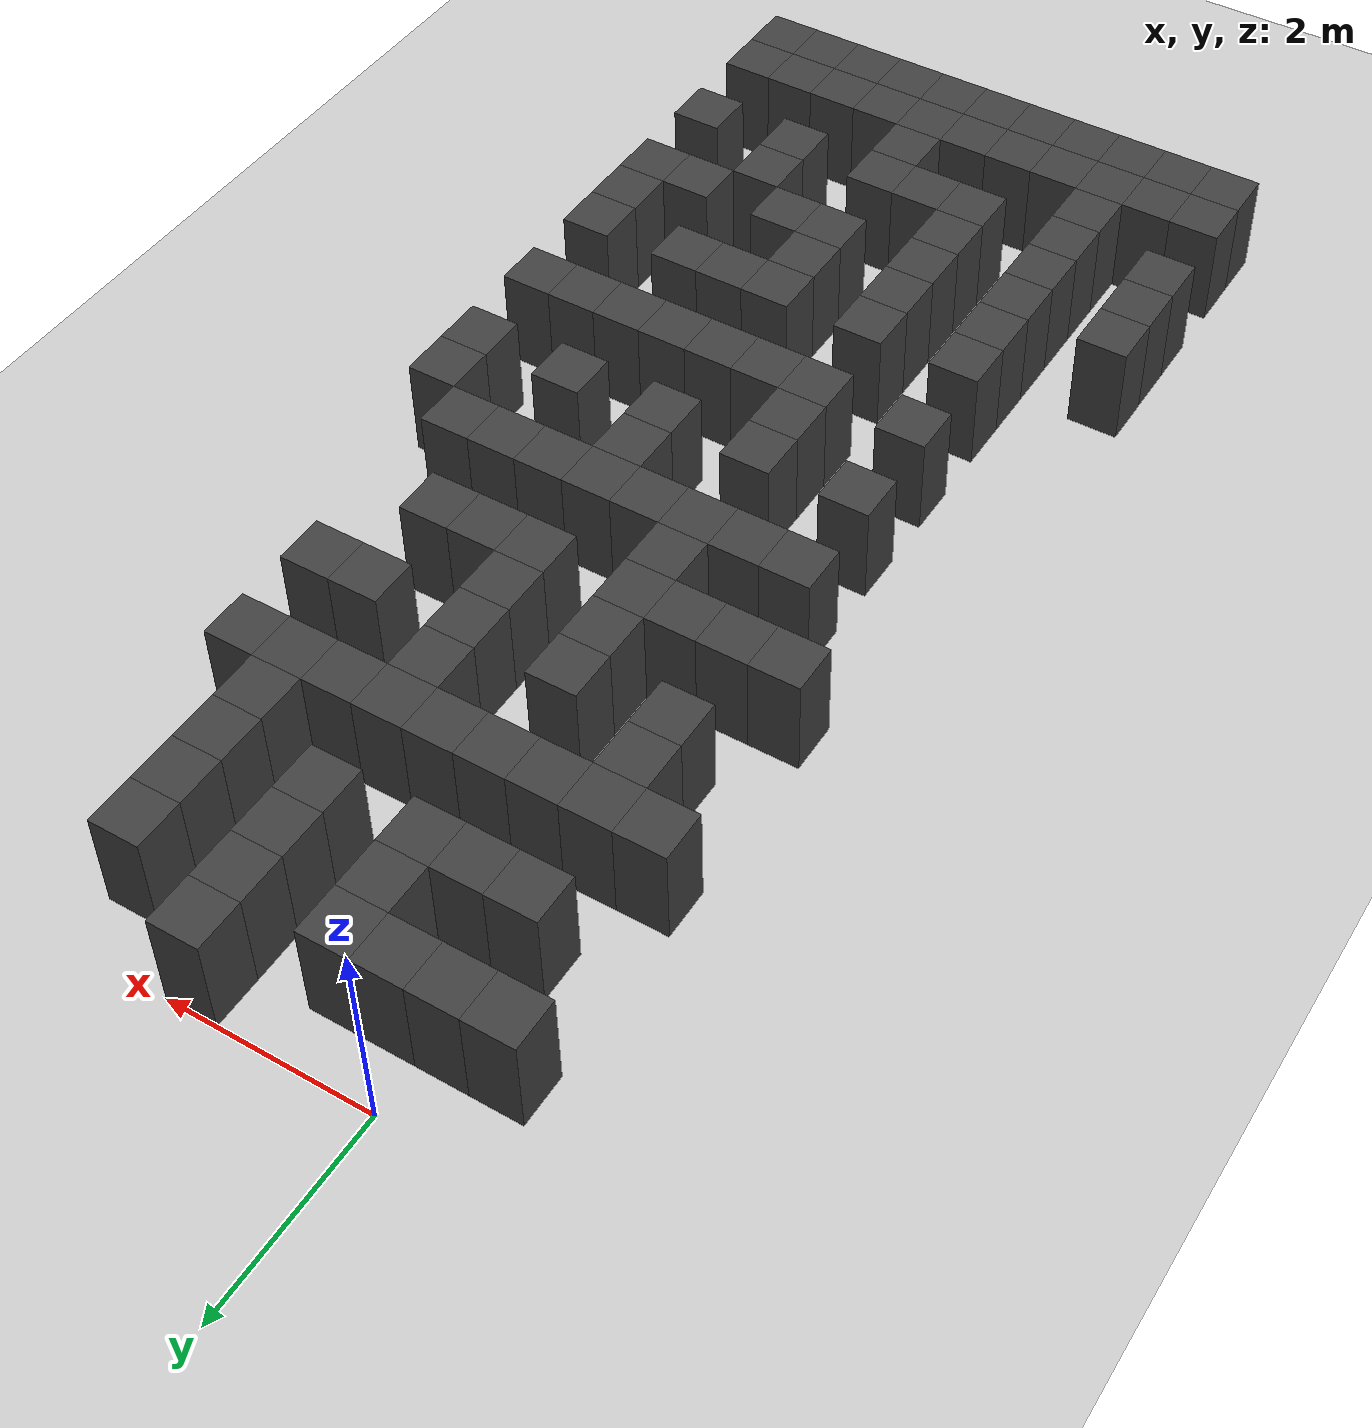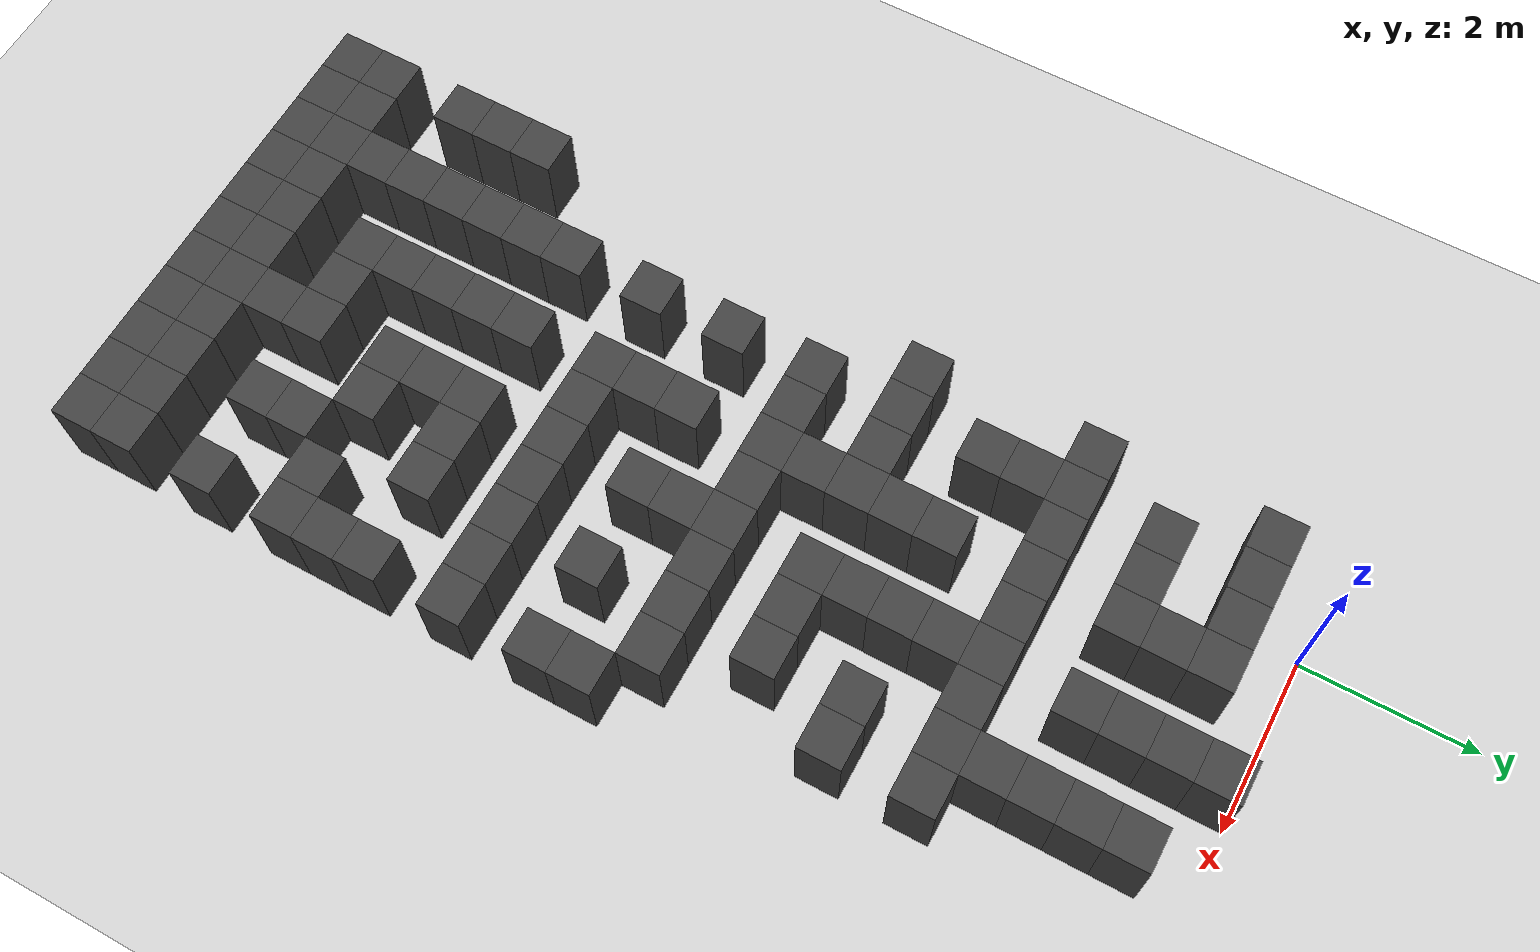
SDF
<sdf version="1.7">
 <world name="map_18313">
  <model name="ground_plane">
   <static>true</static>
   <link name="link">
    <collision name="collision">
     <geometry><plane><normal>0 0 1</normal><size>200 200</size></plane></geometry>
    </collision>
    <visual name="visual">
     <geometry><plane><normal>0 0 1</normal><size>200 200</size></plane></geometry>
     <material><ambient>0.8 0.8 0.8 1</ambient><diffuse>0.8 0.8 0.8 1</diffuse></material>
    </visual>
   </link>
  </model>
  <model name="maze_environment">
   <static>true</static>
   <link name="wall_649">
    <pose>1.750 -0.250 0.500 0 0 0</pose>
    <collision name="col"><geometry><box><size>0.5 0.5 1.0</size></box></geometry></collision>
    <visual name="vis">
     <geometry><box><size>0.5 0.5 1.0</size></box></geometry>
     <material><ambient>0.15 0.15 0.15 1</ambient><diffuse>0.25 0.25 0.25 1</diffuse></material>
    </visual>
   </link>
   <link name="wall_671">
    <pose>-0.750 -0.750 0.500 0 0 0</pose>
    <collision name="col"><geometry><box><size>0.5 0.5 1.0</size></box></geometry></collision>
    <visual name="vis">
     <geometry><box><size>0.5 0.5 1.0</size></box></geometry>
     <material><ambient>0.15 0.15 0.15 1</ambient><diffuse>0.25 0.25 0.25 1</diffuse></material>
    </visual>
   </link>
   <link name="wall_672">
    <pose>-0.250 -0.750 0.500 0 0 0</pose>
    <collision name="col"><geometry><box><size>0.5 0.5 1.0</size></box></geometry></collision>
    <visual name="vis">
     <geometry><box><size>0.5 0.5 1.0</size></box></geometry>
     <material><ambient>0.15 0.15 0.15 1</ambient><diffuse>0.25 0.25 0.25 1</diffuse></material>
    </visual>
   </link>
   <link name="wall_673">
    <pose>0.250 -0.750 0.500 0 0 0</pose>
    <collision name="col"><geometry><box><size>0.5 0.5 1.0</size></box></geometry></collision>
    <visual name="vis">
     <geometry><box><size>0.5 0.5 1.0</size></box></geometry>
     <material><ambient>0.15 0.15 0.15 1</ambient><diffuse>0.25 0.25 0.25 1</diffuse></material>
    </visual>
   </link>
   <link name="wall_674">
    <pose>0.750 -0.750 0.500 0 0 0</pose>
    <collision name="col"><geometry><box><size>0.5 0.5 1.0</size></box></geometry></collision>
    <visual name="vis">
     <geometry><box><size>0.5 0.5 1.0</size></box></geometry>
     <material><ambient>0.15 0.15 0.15 1</ambient><diffuse>0.25 0.25 0.25 1</diffuse></material>
    </visual>
   </link>
   <link name="wall_675">
    <pose>1.750 -0.750 0.500 0 0 0</pose>
    <collision name="col"><geometry><box><size>0.5 0.5 1.0</size></box></geometry></collision>
    <visual name="vis">
     <geometry><box><size>0.5 0.5 1.0</size></box></geometry>
     <material><ambient>0.15 0.15 0.15 1</ambient><diffuse>0.25 0.25 0.25 1</diffuse></material>
    </visual>
   </link>
   <link name="wall_676">
    <pose>2.750 -0.750 0.500 0 0 0</pose>
    <collision name="col"><geometry><box><size>0.5 0.5 1.0</size></box></geometry></collision>
    <visual name="vis">
     <geometry><box><size>0.5 0.5 1.0</size></box></geometry>
     <material><ambient>0.15 0.15 0.15 1</ambient><diffuse>0.25 0.25 0.25 1</diffuse></material>
    </visual>
   </link>
   <link name="wall_697">
    <pose>0.750 -1.250 0.500 0 0 0</pose>
    <collision name="col"><geometry><box><size>0.5 0.5 1.0</size></box></geometry></collision>
    <visual name="vis">
     <geometry><box><size>0.5 0.5 1.0</size></box></geometry>
     <material><ambient>0.15 0.15 0.15 1</ambient><diffuse>0.25 0.25 0.25 1</diffuse></material>
    </visual>
   </link>
   <link name="wall_698">
    <pose>1.750 -1.250 0.500 0 0 0</pose>
    <collision name="col"><geometry><box><size>0.5 0.5 1.0</size></box></geometry></collision>
    <visual name="vis">
     <geometry><box><size>0.5 0.5 1.0</size></box></geometry>
     <material><ambient>0.15 0.15 0.15 1</ambient><diffuse>0.25 0.25 0.25 1</diffuse></material>
    </visual>
   </link>
   <link name="wall_699">
    <pose>2.750 -1.250 0.500 0 0 0</pose>
    <collision name="col"><geometry><box><size>0.5 0.5 1.0</size></box></geometry></collision>
    <visual name="vis">
     <geometry><box><size>0.5 0.5 1.0</size></box></geometry>
     <material><ambient>0.15 0.15 0.15 1</ambient><diffuse>0.25 0.25 0.25 1</diffuse></material>
    </visual>
   </link>
   <link name="wall_724">
    <pose>-0.250 -1.750 0.500 0 0 0</pose>
    <collision name="col"><geometry><box><size>0.5 0.5 1.0</size></box></geometry></collision>
    <visual name="vis">
     <geometry><box><size>0.5 0.5 1.0</size></box></geometry>
     <material><ambient>0.15 0.15 0.15 1</ambient><diffuse>0.25 0.25 0.25 1</diffuse></material>
    </visual>
   </link>
   <link name="wall_725">
    <pose>0.250 -1.750 0.500 0 0 0</pose>
    <collision name="col"><geometry><box><size>0.5 0.5 1.0</size></box></geometry></collision>
    <visual name="vis">
     <geometry><box><size>0.5 0.5 1.0</size></box></geometry>
     <material><ambient>0.15 0.15 0.15 1</ambient><diffuse>0.25 0.25 0.25 1</diffuse></material>
    </visual>
   </link>
   <link name="wall_726">
    <pose>0.750 -1.750 0.500 0 0 0</pose>
    <collision name="col"><geometry><box><size>0.5 0.5 1.0</size></box></geometry></collision>
    <visual name="vis">
     <geometry><box><size>0.5 0.5 1.0</size></box></geometry>
     <material><ambient>0.15 0.15 0.15 1</ambient><diffuse>0.25 0.25 0.25 1</diffuse></material>
    </visual>
   </link>
   <link name="wall_727">
    <pose>1.750 -1.750 0.500 0 0 0</pose>
    <collision name="col"><geometry><box><size>0.5 0.5 1.0</size></box></geometry></collision>
    <visual name="vis">
     <geometry><box><size>0.5 0.5 1.0</size></box></geometry>
     <material><ambient>0.15 0.15 0.15 1</ambient><diffuse>0.25 0.25 0.25 1</diffuse></material>
    </visual>
   </link>
   <link name="wall_728">
    <pose>2.750 -1.750 0.500 0 0 0</pose>
    <collision name="col"><geometry><box><size>0.5 0.5 1.0</size></box></geometry></collision>
    <visual name="vis">
     <geometry><box><size>0.5 0.5 1.0</size></box></geometry>
     <material><ambient>0.15 0.15 0.15 1</ambient><diffuse>0.25 0.25 0.25 1</diffuse></material>
    </visual>
   </link>
   <link name="wall_747">
    <pose>2.750 -2.250 0.500 0 0 0</pose>
    <collision name="col"><geometry><box><size>0.5 0.5 1.0</size></box></geometry></collision>
    <visual name="vis">
     <geometry><box><size>0.5 0.5 1.0</size></box></geometry>
     <material><ambient>0.15 0.15 0.15 1</ambient><diffuse>0.25 0.25 0.25 1</diffuse></material>
    </visual>
   </link>
   <link name="wall_770">
    <pose>-0.750 -2.750 0.500 0 0 0</pose>
    <collision name="col"><geometry><box><size>0.5 0.5 1.0</size></box></geometry></collision>
    <visual name="vis">
     <geometry><box><size>0.5 0.5 1.0</size></box></geometry>
     <material><ambient>0.15 0.15 0.15 1</ambient><diffuse>0.25 0.25 0.25 1</diffuse></material>
    </visual>
   </link>
   <link name="wall_771">
    <pose>-0.250 -2.750 0.500 0 0 0</pose>
    <collision name="col"><geometry><box><size>0.5 0.5 1.0</size></box></geometry></collision>
    <visual name="vis">
     <geometry><box><size>0.5 0.5 1.0</size></box></geometry>
     <material><ambient>0.15 0.15 0.15 1</ambient><diffuse>0.25 0.25 0.25 1</diffuse></material>
    </visual>
   </link>
   <link name="wall_772">
    <pose>0.250 -2.750 0.500 0 0 0</pose>
    <collision name="col"><geometry><box><size>0.5 0.5 1.0</size></box></geometry></collision>
    <visual name="vis">
     <geometry><box><size>0.5 0.5 1.0</size></box></geometry>
     <material><ambient>0.15 0.15 0.15 1</ambient><diffuse>0.25 0.25 0.25 1</diffuse></material>
    </visual>
   </link>
   <link name="wall_773">
    <pose>0.750 -2.750 0.500 0 0 0</pose>
    <collision name="col"><geometry><box><size>0.5 0.5 1.0</size></box></geometry></collision>
    <visual name="vis">
     <geometry><box><size>0.5 0.5 1.0</size></box></geometry>
     <material><ambient>0.15 0.15 0.15 1</ambient><diffuse>0.25 0.25 0.25 1</diffuse></material>
    </visual>
   </link>
   <link name="wall_774">
    <pose>1.250 -2.750 0.500 0 0 0</pose>
    <collision name="col"><geometry><box><size>0.5 0.5 1.0</size></box></geometry></collision>
    <visual name="vis">
     <geometry><box><size>0.5 0.5 1.0</size></box></geometry>
     <material><ambient>0.15 0.15 0.15 1</ambient><diffuse>0.25 0.25 0.25 1</diffuse></material>
    </visual>
   </link>
   <link name="wall_775">
    <pose>1.750 -2.750 0.500 0 0 0</pose>
    <collision name="col"><geometry><box><size>0.5 0.5 1.0</size></box></geometry></collision>
    <visual name="vis">
     <geometry><box><size>0.5 0.5 1.0</size></box></geometry>
     <material><ambient>0.15 0.15 0.15 1</ambient><diffuse>0.25 0.25 0.25 1</diffuse></material>
    </visual>
   </link>
   <link name="wall_776">
    <pose>2.250 -2.750 0.500 0 0 0</pose>
    <collision name="col"><geometry><box><size>0.5 0.5 1.0</size></box></geometry></collision>
    <visual name="vis">
     <geometry><box><size>0.5 0.5 1.0</size></box></geometry>
     <material><ambient>0.15 0.15 0.15 1</ambient><diffuse>0.25 0.25 0.25 1</diffuse></material>
    </visual>
   </link>
   <link name="wall_777">
    <pose>2.750 -2.750 0.500 0 0 0</pose>
    <collision name="col"><geometry><box><size>0.5 0.5 1.0</size></box></geometry></collision>
    <visual name="vis">
     <geometry><box><size>0.5 0.5 1.0</size></box></geometry>
     <material><ambient>0.15 0.15 0.15 1</ambient><diffuse>0.25 0.25 0.25 1</diffuse></material>
    </visual>
   </link>
   <link name="wall_778">
    <pose>3.250 -2.750 0.500 0 0 0</pose>
    <collision name="col"><geometry><box><size>0.5 0.5 1.0</size></box></geometry></collision>
    <visual name="vis">
     <geometry><box><size>0.5 0.5 1.0</size></box></geometry>
     <material><ambient>0.15 0.15 0.15 1</ambient><diffuse>0.25 0.25 0.25 1</diffuse></material>
    </visual>
   </link>
   <link name="wall_798">
    <pose>-0.250 -3.250 0.500 0 0 0</pose>
    <collision name="col"><geometry><box><size>0.5 0.5 1.0</size></box></geometry></collision>
    <visual name="vis">
     <geometry><box><size>0.5 0.5 1.0</size></box></geometry>
     <material><ambient>0.15 0.15 0.15 1</ambient><diffuse>0.25 0.25 0.25 1</diffuse></material>
    </visual>
   </link>
   <link name="wall_799">
    <pose>1.750 -3.250 0.500 0 0 0</pose>
    <collision name="col"><geometry><box><size>0.5 0.5 1.0</size></box></geometry></collision>
    <visual name="vis">
     <geometry><box><size>0.5 0.5 1.0</size></box></geometry>
     <material><ambient>0.15 0.15 0.15 1</ambient><diffuse>0.25 0.25 0.25 1</diffuse></material>
    </visual>
   </link>
   <link name="wall_821">
    <pose>-0.250 -3.750 0.500 0 0 0</pose>
    <collision name="col"><geometry><box><size>0.5 0.5 1.0</size></box></geometry></collision>
    <visual name="vis">
     <geometry><box><size>0.5 0.5 1.0</size></box></geometry>
     <material><ambient>0.15 0.15 0.15 1</ambient><diffuse>0.25 0.25 0.25 1</diffuse></material>
    </visual>
   </link>
   <link name="wall_822">
    <pose>0.750 -3.750 0.500 0 0 0</pose>
    <collision name="col"><geometry><box><size>0.5 0.5 1.0</size></box></geometry></collision>
    <visual name="vis">
     <geometry><box><size>0.5 0.5 1.0</size></box></geometry>
     <material><ambient>0.15 0.15 0.15 1</ambient><diffuse>0.25 0.25 0.25 1</diffuse></material>
    </visual>
   </link>
   <link name="wall_823">
    <pose>1.750 -3.750 0.500 0 0 0</pose>
    <collision name="col"><geometry><box><size>0.5 0.5 1.0</size></box></geometry></collision>
    <visual name="vis">
     <geometry><box><size>0.5 0.5 1.0</size></box></geometry>
     <material><ambient>0.15 0.15 0.15 1</ambient><diffuse>0.25 0.25 0.25 1</diffuse></material>
    </visual>
   </link>
   <link name="wall_824">
    <pose>2.750 -3.750 0.500 0 0 0</pose>
    <collision name="col"><geometry><box><size>0.5 0.5 1.0</size></box></geometry></collision>
    <visual name="vis">
     <geometry><box><size>0.5 0.5 1.0</size></box></geometry>
     <material><ambient>0.15 0.15 0.15 1</ambient><diffuse>0.25 0.25 0.25 1</diffuse></material>
    </visual>
   </link>
   <link name="wall_825">
    <pose>3.250 -3.750 0.500 0 0 0</pose>
    <collision name="col"><geometry><box><size>0.5 0.5 1.0</size></box></geometry></collision>
    <visual name="vis">
     <geometry><box><size>0.5 0.5 1.0</size></box></geometry>
     <material><ambient>0.15 0.15 0.15 1</ambient><diffuse>0.25 0.25 0.25 1</diffuse></material>
    </visual>
   </link>
   <link name="wall_847">
    <pose>0.750 -4.250 0.500 0 0 0</pose>
    <collision name="col"><geometry><box><size>0.5 0.5 1.0</size></box></geometry></collision>
    <visual name="vis">
     <geometry><box><size>0.5 0.5 1.0</size></box></geometry>
     <material><ambient>0.15 0.15 0.15 1</ambient><diffuse>0.25 0.25 0.25 1</diffuse></material>
    </visual>
   </link>
   <link name="wall_848">
    <pose>1.750 -4.250 0.500 0 0 0</pose>
    <collision name="col"><geometry><box><size>0.5 0.5 1.0</size></box></geometry></collision>
    <visual name="vis">
     <geometry><box><size>0.5 0.5 1.0</size></box></geometry>
     <material><ambient>0.15 0.15 0.15 1</ambient><diffuse>0.25 0.25 0.25 1</diffuse></material>
    </visual>
   </link>
   <link name="wall_869">
    <pose>-0.750 -4.750 0.500 0 0 0</pose>
    <collision name="col"><geometry><box><size>0.5 0.5 1.0</size></box></geometry></collision>
    <visual name="vis">
     <geometry><box><size>0.5 0.5 1.0</size></box></geometry>
     <material><ambient>0.15 0.15 0.15 1</ambient><diffuse>0.25 0.25 0.25 1</diffuse></material>
    </visual>
   </link>
   <link name="wall_870">
    <pose>-0.250 -4.750 0.500 0 0 0</pose>
    <collision name="col"><geometry><box><size>0.5 0.5 1.0</size></box></geometry></collision>
    <visual name="vis">
     <geometry><box><size>0.5 0.5 1.0</size></box></geometry>
     <material><ambient>0.15 0.15 0.15 1</ambient><diffuse>0.25 0.25 0.25 1</diffuse></material>
    </visual>
   </link>
   <link name="wall_871">
    <pose>0.250 -4.750 0.500 0 0 0</pose>
    <collision name="col"><geometry><box><size>0.5 0.5 1.0</size></box></geometry></collision>
    <visual name="vis">
     <geometry><box><size>0.5 0.5 1.0</size></box></geometry>
     <material><ambient>0.15 0.15 0.15 1</ambient><diffuse>0.25 0.25 0.25 1</diffuse></material>
    </visual>
   </link>
   <link name="wall_872">
    <pose>0.750 -4.750 0.500 0 0 0</pose>
    <collision name="col"><geometry><box><size>0.5 0.5 1.0</size></box></geometry></collision>
    <visual name="vis">
     <geometry><box><size>0.5 0.5 1.0</size></box></geometry>
     <material><ambient>0.15 0.15 0.15 1</ambient><diffuse>0.25 0.25 0.25 1</diffuse></material>
    </visual>
   </link>
   <link name="wall_873">
    <pose>1.750 -4.750 0.500 0 0 0</pose>
    <collision name="col"><geometry><box><size>0.5 0.5 1.0</size></box></geometry></collision>
    <visual name="vis">
     <geometry><box><size>0.5 0.5 1.0</size></box></geometry>
     <material><ambient>0.15 0.15 0.15 1</ambient><diffuse>0.25 0.25 0.25 1</diffuse></material>
    </visual>
   </link>
   <link name="wall_874">
    <pose>2.250 -4.750 0.500 0 0 0</pose>
    <collision name="col"><geometry><box><size>0.5 0.5 1.0</size></box></geometry></collision>
    <visual name="vis">
     <geometry><box><size>0.5 0.5 1.0</size></box></geometry>
     <material><ambient>0.15 0.15 0.15 1</ambient><diffuse>0.25 0.25 0.25 1</diffuse></material>
    </visual>
   </link>
   <link name="wall_875">
    <pose>2.750 -4.750 0.500 0 0 0</pose>
    <collision name="col"><geometry><box><size>0.5 0.5 1.0</size></box></geometry></collision>
    <visual name="vis">
     <geometry><box><size>0.5 0.5 1.0</size></box></geometry>
     <material><ambient>0.15 0.15 0.15 1</ambient><diffuse>0.25 0.25 0.25 1</diffuse></material>
    </visual>
   </link>
   <link name="wall_897">
    <pose>0.750 -5.250 0.500 0 0 0</pose>
    <collision name="col"><geometry><box><size>0.5 0.5 1.0</size></box></geometry></collision>
    <visual name="vis">
     <geometry><box><size>0.5 0.5 1.0</size></box></geometry>
     <material><ambient>0.15 0.15 0.15 1</ambient><diffuse>0.25 0.25 0.25 1</diffuse></material>
    </visual>
   </link>
   <link name="wall_920">
    <pose>-0.250 -5.750 0.500 0 0 0</pose>
    <collision name="col"><geometry><box><size>0.5 0.5 1.0</size></box></geometry></collision>
    <visual name="vis">
     <geometry><box><size>0.5 0.5 1.0</size></box></geometry>
     <material><ambient>0.15 0.15 0.15 1</ambient><diffuse>0.25 0.25 0.25 1</diffuse></material>
    </visual>
   </link>
   <link name="wall_921">
    <pose>0.250 -5.750 0.500 0 0 0</pose>
    <collision name="col"><geometry><box><size>0.5 0.5 1.0</size></box></geometry></collision>
    <visual name="vis">
     <geometry><box><size>0.5 0.5 1.0</size></box></geometry>
     <material><ambient>0.15 0.15 0.15 1</ambient><diffuse>0.25 0.25 0.25 1</diffuse></material>
    </visual>
   </link>
   <link name="wall_922">
    <pose>0.750 -5.750 0.500 0 0 0</pose>
    <collision name="col"><geometry><box><size>0.5 0.5 1.0</size></box></geometry></collision>
    <visual name="vis">
     <geometry><box><size>0.5 0.5 1.0</size></box></geometry>
     <material><ambient>0.15 0.15 0.15 1</ambient><diffuse>0.25 0.25 0.25 1</diffuse></material>
    </visual>
   </link>
   <link name="wall_923">
    <pose>1.250 -5.750 0.500 0 0 0</pose>
    <collision name="col"><geometry><box><size>0.5 0.5 1.0</size></box></geometry></collision>
    <visual name="vis">
     <geometry><box><size>0.5 0.5 1.0</size></box></geometry>
     <material><ambient>0.15 0.15 0.15 1</ambient><diffuse>0.25 0.25 0.25 1</diffuse></material>
    </visual>
   </link>
   <link name="wall_924">
    <pose>1.750 -5.750 0.500 0 0 0</pose>
    <collision name="col"><geometry><box><size>0.5 0.5 1.0</size></box></geometry></collision>
    <visual name="vis">
     <geometry><box><size>0.5 0.5 1.0</size></box></geometry>
     <material><ambient>0.15 0.15 0.15 1</ambient><diffuse>0.25 0.25 0.25 1</diffuse></material>
    </visual>
   </link>
   <link name="wall_925">
    <pose>2.250 -5.750 0.500 0 0 0</pose>
    <collision name="col"><geometry><box><size>0.5 0.5 1.0</size></box></geometry></collision>
    <visual name="vis">
     <geometry><box><size>0.5 0.5 1.0</size></box></geometry>
     <material><ambient>0.15 0.15 0.15 1</ambient><diffuse>0.25 0.25 0.25 1</diffuse></material>
    </visual>
   </link>
   <link name="wall_926">
    <pose>2.750 -5.750 0.500 0 0 0</pose>
    <collision name="col"><geometry><box><size>0.5 0.5 1.0</size></box></geometry></collision>
    <visual name="vis">
     <geometry><box><size>0.5 0.5 1.0</size></box></geometry>
     <material><ambient>0.15 0.15 0.15 1</ambient><diffuse>0.25 0.25 0.25 1</diffuse></material>
    </visual>
   </link>
   <link name="wall_927">
    <pose>3.250 -5.750 0.500 0 0 0</pose>
    <collision name="col"><geometry><box><size>0.5 0.5 1.0</size></box></geometry></collision>
    <visual name="vis">
     <geometry><box><size>0.5 0.5 1.0</size></box></geometry>
     <material><ambient>0.15 0.15 0.15 1</ambient><diffuse>0.25 0.25 0.25 1</diffuse></material>
    </visual>
   </link>
   <link name="wall_947">
    <pose>1.750 -6.250 0.500 0 0 0</pose>
    <collision name="col"><geometry><box><size>0.5 0.5 1.0</size></box></geometry></collision>
    <visual name="vis">
     <geometry><box><size>0.5 0.5 1.0</size></box></geometry>
     <material><ambient>0.15 0.15 0.15 1</ambient><diffuse>0.25 0.25 0.25 1</diffuse></material>
    </visual>
   </link>
   <link name="wall_948">
    <pose>3.750 -6.250 0.500 0 0 0</pose>
    <collision name="col"><geometry><box><size>0.5 0.5 1.0</size></box></geometry></collision>
    <visual name="vis">
     <geometry><box><size>0.5 0.5 1.0</size></box></geometry>
     <material><ambient>0.15 0.15 0.15 1</ambient><diffuse>0.25 0.25 0.25 1</diffuse></material>
    </visual>
   </link>
   <link name="wall_970">
    <pose>-0.250 -6.750 0.500 0 0 0</pose>
    <collision name="col"><geometry><box><size>0.5 0.5 1.0</size></box></geometry></collision>
    <visual name="vis">
     <geometry><box><size>0.5 0.5 1.0</size></box></geometry>
     <material><ambient>0.15 0.15 0.15 1</ambient><diffuse>0.25 0.25 0.25 1</diffuse></material>
    </visual>
   </link>
   <link name="wall_971">
    <pose>0.750 -6.750 0.500 0 0 0</pose>
    <collision name="col"><geometry><box><size>0.5 0.5 1.0</size></box></geometry></collision>
    <visual name="vis">
     <geometry><box><size>0.5 0.5 1.0</size></box></geometry>
     <material><ambient>0.15 0.15 0.15 1</ambient><diffuse>0.25 0.25 0.25 1</diffuse></material>
    </visual>
   </link>
   <link name="wall_972">
    <pose>1.750 -6.750 0.500 0 0 0</pose>
    <collision name="col"><geometry><box><size>0.5 0.5 1.0</size></box></geometry></collision>
    <visual name="vis">
     <geometry><box><size>0.5 0.5 1.0</size></box></geometry>
     <material><ambient>0.15 0.15 0.15 1</ambient><diffuse>0.25 0.25 0.25 1</diffuse></material>
    </visual>
   </link>
   <link name="wall_973">
    <pose>2.750 -6.750 0.500 0 0 0</pose>
    <collision name="col"><geometry><box><size>0.5 0.5 1.0</size></box></geometry></collision>
    <visual name="vis">
     <geometry><box><size>0.5 0.5 1.0</size></box></geometry>
     <material><ambient>0.15 0.15 0.15 1</ambient><diffuse>0.25 0.25 0.25 1</diffuse></material>
    </visual>
   </link>
   <link name="wall_974">
    <pose>3.750 -6.750 0.500 0 0 0</pose>
    <collision name="col"><geometry><box><size>0.5 0.5 1.0</size></box></geometry></collision>
    <visual name="vis">
     <geometry><box><size>0.5 0.5 1.0</size></box></geometry>
     <material><ambient>0.15 0.15 0.15 1</ambient><diffuse>0.25 0.25 0.25 1</diffuse></material>
    </visual>
   </link>
   <link name="wall_996">
    <pose>0.750 -7.250 0.500 0 0 0</pose>
    <collision name="col"><geometry><box><size>0.5 0.5 1.0</size></box></geometry></collision>
    <visual name="vis">
     <geometry><box><size>0.5 0.5 1.0</size></box></geometry>
     <material><ambient>0.15 0.15 0.15 1</ambient><diffuse>0.25 0.25 0.25 1</diffuse></material>
    </visual>
   </link>
   <link name="wall_1019">
    <pose>-0.250 -7.750 0.500 0 0 0</pose>
    <collision name="col"><geometry><box><size>0.5 0.5 1.0</size></box></geometry></collision>
    <visual name="vis">
     <geometry><box><size>0.5 0.5 1.0</size></box></geometry>
     <material><ambient>0.15 0.15 0.15 1</ambient><diffuse>0.25 0.25 0.25 1</diffuse></material>
    </visual>
   </link>
   <link name="wall_1020">
    <pose>0.750 -7.750 0.500 0 0 0</pose>
    <collision name="col"><geometry><box><size>0.5 0.5 1.0</size></box></geometry></collision>
    <visual name="vis">
     <geometry><box><size>0.5 0.5 1.0</size></box></geometry>
     <material><ambient>0.15 0.15 0.15 1</ambient><diffuse>0.25 0.25 0.25 1</diffuse></material>
    </visual>
   </link>
   <link name="wall_1021">
    <pose>1.250 -7.750 0.500 0 0 0</pose>
    <collision name="col"><geometry><box><size>0.5 0.5 1.0</size></box></geometry></collision>
    <visual name="vis">
     <geometry><box><size>0.5 0.5 1.0</size></box></geometry>
     <material><ambient>0.15 0.15 0.15 1</ambient><diffuse>0.25 0.25 0.25 1</diffuse></material>
    </visual>
   </link>
   <link name="wall_1022">
    <pose>1.750 -7.750 0.500 0 0 0</pose>
    <collision name="col"><geometry><box><size>0.5 0.5 1.0</size></box></geometry></collision>
    <visual name="vis">
     <geometry><box><size>0.5 0.5 1.0</size></box></geometry>
     <material><ambient>0.15 0.15 0.15 1</ambient><diffuse>0.25 0.25 0.25 1</diffuse></material>
    </visual>
   </link>
   <link name="wall_1023">
    <pose>2.250 -7.750 0.500 0 0 0</pose>
    <collision name="col"><geometry><box><size>0.5 0.5 1.0</size></box></geometry></collision>
    <visual name="vis">
     <geometry><box><size>0.5 0.5 1.0</size></box></geometry>
     <material><ambient>0.15 0.15 0.15 1</ambient><diffuse>0.25 0.25 0.25 1</diffuse></material>
    </visual>
   </link>
   <link name="wall_1024">
    <pose>2.750 -7.750 0.500 0 0 0</pose>
    <collision name="col"><geometry><box><size>0.5 0.5 1.0</size></box></geometry></collision>
    <visual name="vis">
     <geometry><box><size>0.5 0.5 1.0</size></box></geometry>
     <material><ambient>0.15 0.15 0.15 1</ambient><diffuse>0.25 0.25 0.25 1</diffuse></material>
    </visual>
   </link>
   <link name="wall_1025">
    <pose>3.250 -7.750 0.500 0 0 0</pose>
    <collision name="col"><geometry><box><size>0.5 0.5 1.0</size></box></geometry></collision>
    <visual name="vis">
     <geometry><box><size>0.5 0.5 1.0</size></box></geometry>
     <material><ambient>0.15 0.15 0.15 1</ambient><diffuse>0.25 0.25 0.25 1</diffuse></material>
    </visual>
   </link>
   <link name="wall_1026">
    <pose>3.750 -7.750 0.500 0 0 0</pose>
    <collision name="col"><geometry><box><size>0.5 0.5 1.0</size></box></geometry></collision>
    <visual name="vis">
     <geometry><box><size>0.5 0.5 1.0</size></box></geometry>
     <material><ambient>0.15 0.15 0.15 1</ambient><diffuse>0.25 0.25 0.25 1</diffuse></material>
    </visual>
   </link>
   <link name="wall_1069">
    <pose>-0.250 -8.750 0.500 0 0 0</pose>
    <collision name="col"><geometry><box><size>0.5 0.5 1.0</size></box></geometry></collision>
    <visual name="vis">
     <geometry><box><size>0.5 0.5 1.0</size></box></geometry>
     <material><ambient>0.15 0.15 0.15 1</ambient><diffuse>0.25 0.25 0.25 1</diffuse></material>
    </visual>
   </link>
   <link name="wall_1070">
    <pose>0.750 -8.750 0.500 0 0 0</pose>
    <collision name="col"><geometry><box><size>0.5 0.5 1.0</size></box></geometry></collision>
    <visual name="vis">
     <geometry><box><size>0.5 0.5 1.0</size></box></geometry>
     <material><ambient>0.15 0.15 0.15 1</ambient><diffuse>0.25 0.25 0.25 1</diffuse></material>
    </visual>
   </link>
   <link name="wall_1071">
    <pose>1.750 -8.750 0.500 0 0 0</pose>
    <collision name="col"><geometry><box><size>0.5 0.5 1.0</size></box></geometry></collision>
    <visual name="vis">
     <geometry><box><size>0.5 0.5 1.0</size></box></geometry>
     <material><ambient>0.15 0.15 0.15 1</ambient><diffuse>0.25 0.25 0.25 1</diffuse></material>
    </visual>
   </link>
   <link name="wall_1072">
    <pose>2.250 -8.750 0.500 0 0 0</pose>
    <collision name="col"><geometry><box><size>0.5 0.5 1.0</size></box></geometry></collision>
    <visual name="vis">
     <geometry><box><size>0.5 0.5 1.0</size></box></geometry>
     <material><ambient>0.15 0.15 0.15 1</ambient><diffuse>0.25 0.25 0.25 1</diffuse></material>
    </visual>
   </link>
   <link name="wall_1073">
    <pose>2.750 -8.750 0.500 0 0 0</pose>
    <collision name="col"><geometry><box><size>0.5 0.5 1.0</size></box></geometry></collision>
    <visual name="vis">
     <geometry><box><size>0.5 0.5 1.0</size></box></geometry>
     <material><ambient>0.15 0.15 0.15 1</ambient><diffuse>0.25 0.25 0.25 1</diffuse></material>
    </visual>
   </link>
   <link name="wall_1074">
    <pose>3.750 -8.750 0.500 0 0 0</pose>
    <collision name="col"><geometry><box><size>0.5 0.5 1.0</size></box></geometry></collision>
    <visual name="vis">
     <geometry><box><size>0.5 0.5 1.0</size></box></geometry>
     <material><ambient>0.15 0.15 0.15 1</ambient><diffuse>0.25 0.25 0.25 1</diffuse></material>
    </visual>
   </link>
   <link name="wall_1090">
    <pose>-0.250 -9.250 0.500 0 0 0</pose>
    <collision name="col"><geometry><box><size>0.5 0.5 1.0</size></box></geometry></collision>
    <visual name="vis">
     <geometry><box><size>0.5 0.5 1.0</size></box></geometry>
     <material><ambient>0.15 0.15 0.15 1</ambient><diffuse>0.25 0.25 0.25 1</diffuse></material>
    </visual>
   </link>
   <link name="wall_1091">
    <pose>0.750 -9.250 0.500 0 0 0</pose>
    <collision name="col"><geometry><box><size>0.5 0.5 1.0</size></box></geometry></collision>
    <visual name="vis">
     <geometry><box><size>0.5 0.5 1.0</size></box></geometry>
     <material><ambient>0.15 0.15 0.15 1</ambient><diffuse>0.25 0.25 0.25 1</diffuse></material>
    </visual>
   </link>
   <link name="wall_1092">
    <pose>1.750 -9.250 0.500 0 0 0</pose>
    <collision name="col"><geometry><box><size>0.5 0.5 1.0</size></box></geometry></collision>
    <visual name="vis">
     <geometry><box><size>0.5 0.5 1.0</size></box></geometry>
     <material><ambient>0.15 0.15 0.15 1</ambient><diffuse>0.25 0.25 0.25 1</diffuse></material>
    </visual>
   </link>
   <link name="wall_1093">
    <pose>3.750 -9.250 0.500 0 0 0</pose>
    <collision name="col"><geometry><box><size>0.5 0.5 1.0</size></box></geometry></collision>
    <visual name="vis">
     <geometry><box><size>0.5 0.5 1.0</size></box></geometry>
     <material><ambient>0.15 0.15 0.15 1</ambient><diffuse>0.25 0.25 0.25 1</diffuse></material>
    </visual>
   </link>
   <link name="wall_1117">
    <pose>-1.250 -9.750 0.500 0 0 0</pose>
    <collision name="col"><geometry><box><size>0.5 0.5 1.0</size></box></geometry></collision>
    <visual name="vis">
     <geometry><box><size>0.5 0.5 1.0</size></box></geometry>
     <material><ambient>0.15 0.15 0.15 1</ambient><diffuse>0.25 0.25 0.25 1</diffuse></material>
    </visual>
   </link>
   <link name="wall_1118">
    <pose>-0.250 -9.750 0.500 0 0 0</pose>
    <collision name="col"><geometry><box><size>0.5 0.5 1.0</size></box></geometry></collision>
    <visual name="vis">
     <geometry><box><size>0.5 0.5 1.0</size></box></geometry>
     <material><ambient>0.15 0.15 0.15 1</ambient><diffuse>0.25 0.25 0.25 1</diffuse></material>
    </visual>
   </link>
   <link name="wall_1119">
    <pose>0.750 -9.750 0.500 0 0 0</pose>
    <collision name="col"><geometry><box><size>0.5 0.5 1.0</size></box></geometry></collision>
    <visual name="vis">
     <geometry><box><size>0.5 0.5 1.0</size></box></geometry>
     <material><ambient>0.15 0.15 0.15 1</ambient><diffuse>0.25 0.25 0.25 1</diffuse></material>
    </visual>
   </link>
   <link name="wall_1120">
    <pose>1.750 -9.750 0.500 0 0 0</pose>
    <collision name="col"><geometry><box><size>0.5 0.5 1.0</size></box></geometry></collision>
    <visual name="vis">
     <geometry><box><size>0.5 0.5 1.0</size></box></geometry>
     <material><ambient>0.15 0.15 0.15 1</ambient><diffuse>0.25 0.25 0.25 1</diffuse></material>
    </visual>
   </link>
   <link name="wall_1121">
    <pose>2.250 -9.750 0.500 0 0 0</pose>
    <collision name="col"><geometry><box><size>0.5 0.5 1.0</size></box></geometry></collision>
    <visual name="vis">
     <geometry><box><size>0.5 0.5 1.0</size></box></geometry>
     <material><ambient>0.15 0.15 0.15 1</ambient><diffuse>0.25 0.25 0.25 1</diffuse></material>
    </visual>
   </link>
   <link name="wall_1122">
    <pose>3.250 -9.750 0.500 0 0 0</pose>
    <collision name="col"><geometry><box><size>0.5 0.5 1.0</size></box></geometry></collision>
    <visual name="vis">
     <geometry><box><size>0.5 0.5 1.0</size></box></geometry>
     <material><ambient>0.15 0.15 0.15 1</ambient><diffuse>0.25 0.25 0.25 1</diffuse></material>
    </visual>
   </link>
   <link name="wall_1123">
    <pose>3.750 -9.750 0.500 0 0 0</pose>
    <collision name="col"><geometry><box><size>0.5 0.5 1.0</size></box></geometry></collision>
    <visual name="vis">
     <geometry><box><size>0.5 0.5 1.0</size></box></geometry>
     <material><ambient>0.15 0.15 0.15 1</ambient><diffuse>0.25 0.25 0.25 1</diffuse></material>
    </visual>
   </link>
   <link name="wall_1145">
    <pose>-1.250 -10.250 0.500 0 0 0</pose>
    <collision name="col"><geometry><box><size>0.5 0.5 1.0</size></box></geometry></collision>
    <visual name="vis">
     <geometry><box><size>0.5 0.5 1.0</size></box></geometry>
     <material><ambient>0.15 0.15 0.15 1</ambient><diffuse>0.25 0.25 0.25 1</diffuse></material>
    </visual>
   </link>
   <link name="wall_1146">
    <pose>-0.250 -10.250 0.500 0 0 0</pose>
    <collision name="col"><geometry><box><size>0.5 0.5 1.0</size></box></geometry></collision>
    <visual name="vis">
     <geometry><box><size>0.5 0.5 1.0</size></box></geometry>
     <material><ambient>0.15 0.15 0.15 1</ambient><diffuse>0.25 0.25 0.25 1</diffuse></material>
    </visual>
   </link>
   <link name="wall_1147">
    <pose>0.750 -10.250 0.500 0 0 0</pose>
    <collision name="col"><geometry><box><size>0.5 0.5 1.0</size></box></geometry></collision>
    <visual name="vis">
     <geometry><box><size>0.5 0.5 1.0</size></box></geometry>
     <material><ambient>0.15 0.15 0.15 1</ambient><diffuse>0.25 0.25 0.25 1</diffuse></material>
    </visual>
   </link>
   <link name="wall_1148">
    <pose>2.750 -10.250 0.500 0 0 0</pose>
    <collision name="col"><geometry><box><size>0.5 0.5 1.0</size></box></geometry></collision>
    <visual name="vis">
     <geometry><box><size>0.5 0.5 1.0</size></box></geometry>
     <material><ambient>0.15 0.15 0.15 1</ambient><diffuse>0.25 0.25 0.25 1</diffuse></material>
    </visual>
   </link>
   <link name="wall_1167">
    <pose>-1.250 -10.750 0.500 0 0 0</pose>
    <collision name="col"><geometry><box><size>0.5 0.5 1.0</size></box></geometry></collision>
    <visual name="vis">
     <geometry><box><size>0.5 0.5 1.0</size></box></geometry>
     <material><ambient>0.15 0.15 0.15 1</ambient><diffuse>0.25 0.25 0.25 1</diffuse></material>
    </visual>
   </link>
   <link name="wall_1168">
    <pose>-0.250 -10.750 0.500 0 0 0</pose>
    <collision name="col"><geometry><box><size>0.5 0.5 1.0</size></box></geometry></collision>
    <visual name="vis">
     <geometry><box><size>0.5 0.5 1.0</size></box></geometry>
     <material><ambient>0.15 0.15 0.15 1</ambient><diffuse>0.25 0.25 0.25 1</diffuse></material>
    </visual>
   </link>
   <link name="wall_1169">
    <pose>0.750 -10.750 0.500 0 0 0</pose>
    <collision name="col"><geometry><box><size>0.5 0.5 1.0</size></box></geometry></collision>
    <visual name="vis">
     <geometry><box><size>0.5 0.5 1.0</size></box></geometry>
     <material><ambient>0.15 0.15 0.15 1</ambient><diffuse>0.25 0.25 0.25 1</diffuse></material>
    </visual>
   </link>
   <link name="wall_1170">
    <pose>1.250 -10.750 0.500 0 0 0</pose>
    <collision name="col"><geometry><box><size>0.5 0.5 1.0</size></box></geometry></collision>
    <visual name="vis">
     <geometry><box><size>0.5 0.5 1.0</size></box></geometry>
     <material><ambient>0.15 0.15 0.15 1</ambient><diffuse>0.25 0.25 0.25 1</diffuse></material>
    </visual>
   </link>
   <link name="wall_1171">
    <pose>1.750 -10.750 0.500 0 0 0</pose>
    <collision name="col"><geometry><box><size>0.5 0.5 1.0</size></box></geometry></collision>
    <visual name="vis">
     <geometry><box><size>0.5 0.5 1.0</size></box></geometry>
     <material><ambient>0.15 0.15 0.15 1</ambient><diffuse>0.25 0.25 0.25 1</diffuse></material>
    </visual>
   </link>
   <link name="wall_1172">
    <pose>2.750 -10.750 0.500 0 0 0</pose>
    <collision name="col"><geometry><box><size>0.5 0.5 1.0</size></box></geometry></collision>
    <visual name="vis">
     <geometry><box><size>0.5 0.5 1.0</size></box></geometry>
     <material><ambient>0.15 0.15 0.15 1</ambient><diffuse>0.25 0.25 0.25 1</diffuse></material>
    </visual>
   </link>
   <link name="wall_1173">
    <pose>3.750 -10.750 0.500 0 0 0</pose>
    <collision name="col"><geometry><box><size>0.5 0.5 1.0</size></box></geometry></collision>
    <visual name="vis">
     <geometry><box><size>0.5 0.5 1.0</size></box></geometry>
     <material><ambient>0.15 0.15 0.15 1</ambient><diffuse>0.25 0.25 0.25 1</diffuse></material>
    </visual>
   </link>
   <link name="wall_1191">
    <pose>-0.250 -11.250 0.500 0 0 0</pose>
    <collision name="col"><geometry><box><size>0.5 0.5 1.0</size></box></geometry></collision>
    <visual name="vis">
     <geometry><box><size>0.5 0.5 1.0</size></box></geometry>
     <material><ambient>0.15 0.15 0.15 1</ambient><diffuse>0.25 0.25 0.25 1</diffuse></material>
    </visual>
   </link>
   <link name="wall_1192">
    <pose>1.750 -11.250 0.500 0 0 0</pose>
    <collision name="col"><geometry><box><size>0.5 0.5 1.0</size></box></geometry></collision>
    <visual name="vis">
     <geometry><box><size>0.5 0.5 1.0</size></box></geometry>
     <material><ambient>0.15 0.15 0.15 1</ambient><diffuse>0.25 0.25 0.25 1</diffuse></material>
    </visual>
   </link>
   <link name="wall_1217">
    <pose>-1.250 -11.750 0.500 0 0 0</pose>
    <collision name="col"><geometry><box><size>0.5 0.5 1.0</size></box></geometry></collision>
    <visual name="vis">
     <geometry><box><size>0.5 0.5 1.0</size></box></geometry>
     <material><ambient>0.15 0.15 0.15 1</ambient><diffuse>0.25 0.25 0.25 1</diffuse></material>
    </visual>
   </link>
   <link name="wall_1218">
    <pose>-0.750 -11.750 0.500 0 0 0</pose>
    <collision name="col"><geometry><box><size>0.5 0.5 1.0</size></box></geometry></collision>
    <visual name="vis">
     <geometry><box><size>0.5 0.5 1.0</size></box></geometry>
     <material><ambient>0.15 0.15 0.15 1</ambient><diffuse>0.25 0.25 0.25 1</diffuse></material>
    </visual>
   </link>
   <link name="wall_1219">
    <pose>-0.250 -11.750 0.500 0 0 0</pose>
    <collision name="col"><geometry><box><size>0.5 0.5 1.0</size></box></geometry></collision>
    <visual name="vis">
     <geometry><box><size>0.5 0.5 1.0</size></box></geometry>
     <material><ambient>0.15 0.15 0.15 1</ambient><diffuse>0.25 0.25 0.25 1</diffuse></material>
    </visual>
   </link>
   <link name="wall_1220">
    <pose>0.250 -11.750 0.500 0 0 0</pose>
    <collision name="col"><geometry><box><size>0.5 0.5 1.0</size></box></geometry></collision>
    <visual name="vis">
     <geometry><box><size>0.5 0.5 1.0</size></box></geometry>
     <material><ambient>0.15 0.15 0.15 1</ambient><diffuse>0.25 0.25 0.25 1</diffuse></material>
    </visual>
   </link>
   <link name="wall_1221">
    <pose>0.750 -11.750 0.500 0 0 0</pose>
    <collision name="col"><geometry><box><size>0.5 0.5 1.0</size></box></geometry></collision>
    <visual name="vis">
     <geometry><box><size>0.5 0.5 1.0</size></box></geometry>
     <material><ambient>0.15 0.15 0.15 1</ambient><diffuse>0.25 0.25 0.25 1</diffuse></material>
    </visual>
   </link>
   <link name="wall_1222">
    <pose>1.250 -11.750 0.500 0 0 0</pose>
    <collision name="col"><geometry><box><size>0.5 0.5 1.0</size></box></geometry></collision>
    <visual name="vis">
     <geometry><box><size>0.5 0.5 1.0</size></box></geometry>
     <material><ambient>0.15 0.15 0.15 1</ambient><diffuse>0.25 0.25 0.25 1</diffuse></material>
    </visual>
   </link>
   <link name="wall_1223">
    <pose>1.750 -11.750 0.500 0 0 0</pose>
    <collision name="col"><geometry><box><size>0.5 0.5 1.0</size></box></geometry></collision>
    <visual name="vis">
     <geometry><box><size>0.5 0.5 1.0</size></box></geometry>
     <material><ambient>0.15 0.15 0.15 1</ambient><diffuse>0.25 0.25 0.25 1</diffuse></material>
    </visual>
   </link>
   <link name="wall_1224">
    <pose>2.250 -11.750 0.500 0 0 0</pose>
    <collision name="col"><geometry><box><size>0.5 0.5 1.0</size></box></geometry></collision>
    <visual name="vis">
     <geometry><box><size>0.5 0.5 1.0</size></box></geometry>
     <material><ambient>0.15 0.15 0.15 1</ambient><diffuse>0.25 0.25 0.25 1</diffuse></material>
    </visual>
   </link>
   <link name="wall_1225">
    <pose>2.750 -11.750 0.500 0 0 0</pose>
    <collision name="col"><geometry><box><size>0.5 0.5 1.0</size></box></geometry></collision>
    <visual name="vis">
     <geometry><box><size>0.5 0.5 1.0</size></box></geometry>
     <material><ambient>0.15 0.15 0.15 1</ambient><diffuse>0.25 0.25 0.25 1</diffuse></material>
    </visual>
   </link>
   <link name="wall_1226">
    <pose>3.250 -11.750 0.500 0 0 0</pose>
    <collision name="col"><geometry><box><size>0.5 0.5 1.0</size></box></geometry></collision>
    <visual name="vis">
     <geometry><box><size>0.5 0.5 1.0</size></box></geometry>
     <material><ambient>0.15 0.15 0.15 1</ambient><diffuse>0.25 0.25 0.25 1</diffuse></material>
    </visual>
   </link>
   <link name="wall_1227">
    <pose>3.750 -11.750 0.500 0 0 0</pose>
    <collision name="col"><geometry><box><size>0.5 0.5 1.0</size></box></geometry></collision>
    <visual name="vis">
     <geometry><box><size>0.5 0.5 1.0</size></box></geometry>
     <material><ambient>0.15 0.15 0.15 1</ambient><diffuse>0.25 0.25 0.25 1</diffuse></material>
    </visual>
   </link>
   <link name="wall_1265">
    <pose>-1.250 -12.250 0.500 0 0 0</pose>
    <collision name="col"><geometry><box><size>0.5 0.5 1.0</size></box></geometry></collision>
    <visual name="vis">
     <geometry><box><size>0.5 0.5 1.0</size></box></geometry>
     <material><ambient>0.15 0.15 0.15 1</ambient><diffuse>0.25 0.25 0.25 1</diffuse></material>
    </visual>
   </link>
   <link name="wall_1266">
    <pose>-0.750 -12.250 0.500 0 0 0</pose>
    <collision name="col"><geometry><box><size>0.5 0.5 1.0</size></box></geometry></collision>
    <visual name="vis">
     <geometry><box><size>0.5 0.5 1.0</size></box></geometry>
     <material><ambient>0.15 0.15 0.15 1</ambient><diffuse>0.25 0.25 0.25 1</diffuse></material>
    </visual>
   </link>
   <link name="wall_1267">
    <pose>-0.250 -12.250 0.500 0 0 0</pose>
    <collision name="col"><geometry><box><size>0.5 0.5 1.0</size></box></geometry></collision>
    <visual name="vis">
     <geometry><box><size>0.5 0.5 1.0</size></box></geometry>
     <material><ambient>0.15 0.15 0.15 1</ambient><diffuse>0.25 0.25 0.25 1</diffuse></material>
    </visual>
   </link>
   <link name="wall_1268">
    <pose>0.250 -12.250 0.500 0 0 0</pose>
    <collision name="col"><geometry><box><size>0.5 0.5 1.0</size></box></geometry></collision>
    <visual name="vis">
     <geometry><box><size>0.5 0.5 1.0</size></box></geometry>
     <material><ambient>0.15 0.15 0.15 1</ambient><diffuse>0.25 0.25 0.25 1</diffuse></material>
    </visual>
   </link>
   <link name="wall_1269">
    <pose>0.750 -12.250 0.500 0 0 0</pose>
    <collision name="col"><geometry><box><size>0.5 0.5 1.0</size></box></geometry></collision>
    <visual name="vis">
     <geometry><box><size>0.5 0.5 1.0</size></box></geometry>
     <material><ambient>0.15 0.15 0.15 1</ambient><diffuse>0.25 0.25 0.25 1</diffuse></material>
    </visual>
   </link>
   <link name="wall_1270">
    <pose>1.250 -12.250 0.500 0 0 0</pose>
    <collision name="col"><geometry><box><size>0.5 0.5 1.0</size></box></geometry></collision>
    <visual name="vis">
     <geometry><box><size>0.5 0.5 1.0</size></box></geometry>
     <material><ambient>0.15 0.15 0.15 1</ambient><diffuse>0.25 0.25 0.25 1</diffuse></material>
    </visual>
   </link>
   <link name="wall_1271">
    <pose>1.750 -12.250 0.500 0 0 0</pose>
    <collision name="col"><geometry><box><size>0.5 0.5 1.0</size></box></geometry></collision>
    <visual name="vis">
     <geometry><box><size>0.5 0.5 1.0</size></box></geometry>
     <material><ambient>0.15 0.15 0.15 1</ambient><diffuse>0.25 0.25 0.25 1</diffuse></material>
    </visual>
   </link>
   <link name="wall_1272">
    <pose>2.250 -12.250 0.500 0 0 0</pose>
    <collision name="col"><geometry><box><size>0.5 0.5 1.0</size></box></geometry></collision>
    <visual name="vis">
     <geometry><box><size>0.5 0.5 1.0</size></box></geometry>
     <material><ambient>0.15 0.15 0.15 1</ambient><diffuse>0.25 0.25 0.25 1</diffuse></material>
    </visual>
   </link>
   <link name="wall_1273">
    <pose>2.750 -12.250 0.500 0 0 0</pose>
    <collision name="col"><geometry><box><size>0.5 0.5 1.0</size></box></geometry></collision>
    <visual name="vis">
     <geometry><box><size>0.5 0.5 1.0</size></box></geometry>
     <material><ambient>0.15 0.15 0.15 1</ambient><diffuse>0.25 0.25 0.25 1</diffuse></material>
    </visual>
   </link>
   <link name="wall_1274">
    <pose>3.250 -12.250 0.500 0 0 0</pose>
    <collision name="col"><geometry><box><size>0.5 0.5 1.0</size></box></geometry></collision>
    <visual name="vis">
     <geometry><box><size>0.5 0.5 1.0</size></box></geometry>
     <material><ambient>0.15 0.15 0.15 1</ambient><diffuse>0.25 0.25 0.25 1</diffuse></material>
    </visual>
   </link>
   <link name="wall_1275">
    <pose>3.750 -12.250 0.500 0 0 0</pose>
    <collision name="col"><geometry><box><size>0.5 0.5 1.0</size></box></geometry></collision>
    <visual name="vis">
     <geometry><box><size>0.5 0.5 1.0</size></box></geometry>
     <material><ambient>0.15 0.15 0.15 1</ambient><diffuse>0.25 0.25 0.25 1</diffuse></material>
    </visual>
   </link>
  </model>
 </world>
</sdf>
